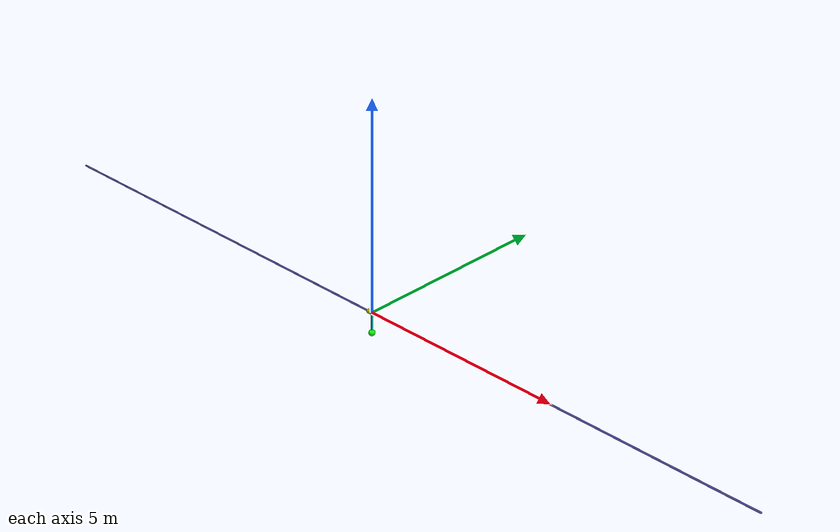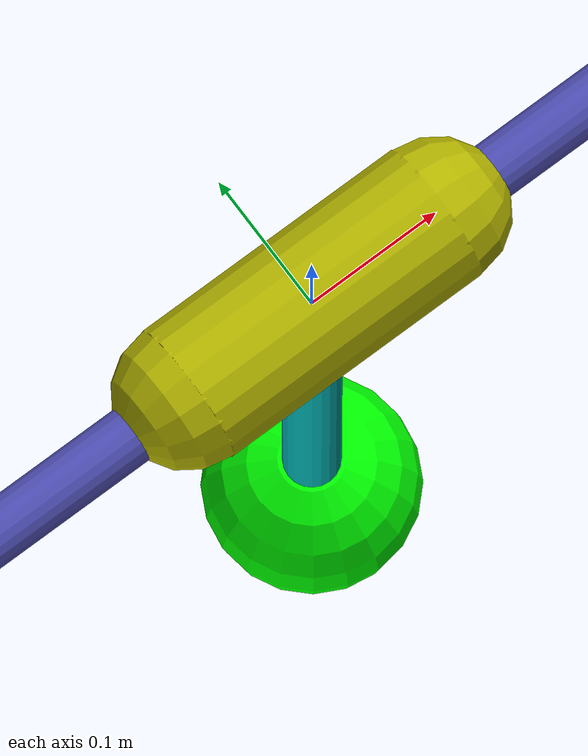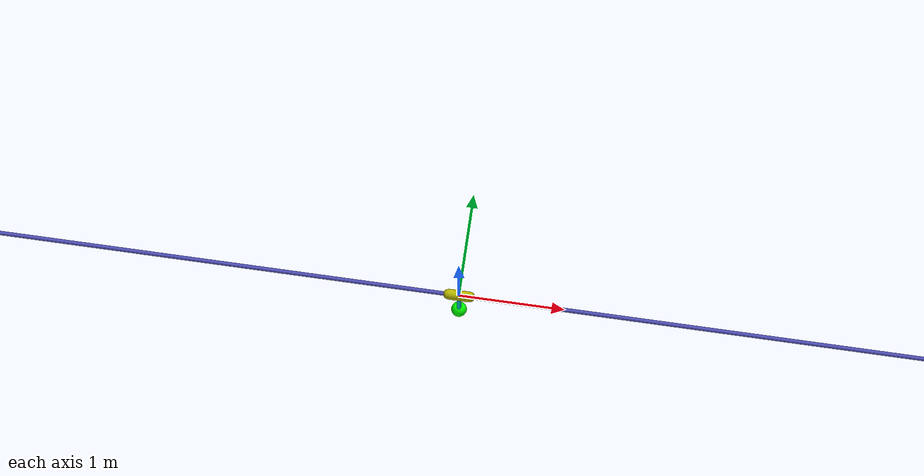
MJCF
<mujoco model="cart_pendulum">
	<compiler inertiafromgeom="true"/>
	<default>
		<joint armature="0" damping="1" limited="true"/>
		<geom contype="0" friction="1 0.1 0.1" rgba="0.7 0.7 0 1"/>
		<tendon/>
		<motor/>
	</default>
	<option gravity="0 0 -9.81" integrator="RK4" timestep="0.005"/>
	<size nstack="3000"/>

	<worldbody>
	<camera name="default" pos="1 -3 -0.25" xyaxes="1 0 0 0 0 1" mode="fixed"/>
		<!--geom name="ground" type="plane" pos="0 0 0" /-->
		<geom name="rail" pos="0 0 0" quat="0.707 0 0.707 0" rgba="0.3 0.3 0.7 1" size="0.02 10" type="capsule" />
		<body name="cart" pos="0 0 0">
			<joint axis="1 0 0" limited="true" name="slider" pos="0 0 0" range="-1 50" type="slide"/>
			<geom name="cart" pos="0 0 0" quat="0.707 0 0.707 0" size="0.05 0.1" type="capsule" mass="2"/>
			<body name="pole" pos="0 0 0">
				<joint axis="0 -1 0" name="hinge" pos="0 0 0" range="-90 90" type="hinge"/>
				<geom fromto="0 0 0 0 0 -0.5" name="cpole" rgba="0 0.7 0.7 1" size="0.02 0.3" type="capsule" />
				<geom name="end_sphere" type="sphere" pos="0 0 -0.5" size="0.075" rgba="0 1 0 1" mass="1"/>
			</body>
		</body>
	</worldbody>

	<actuator>
		<motor ctrllimited="true" ctrlrange="-1 1" gear="50" joint="slider" name="slide"/>
	</actuator>
</mujoco>
